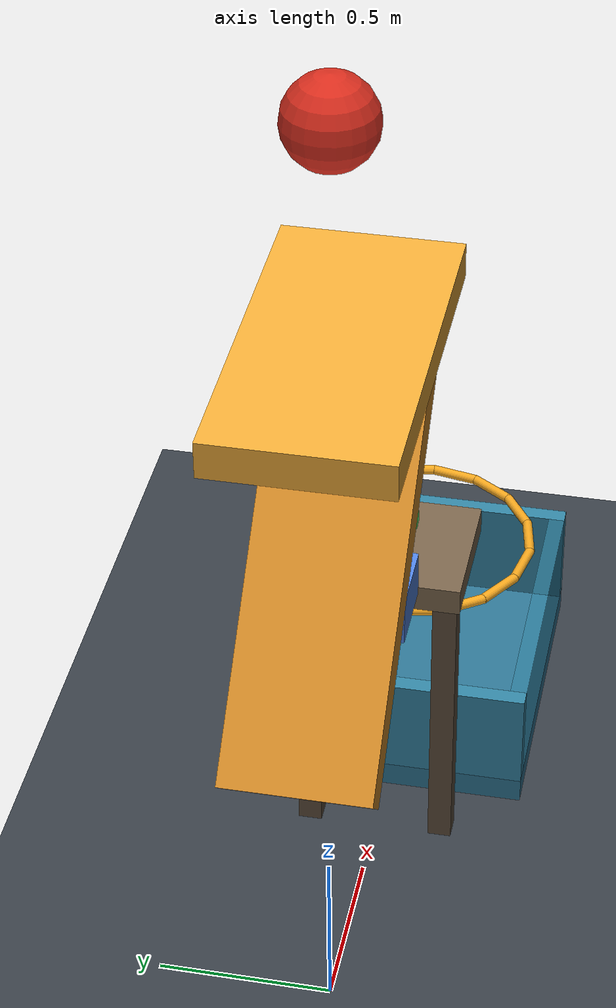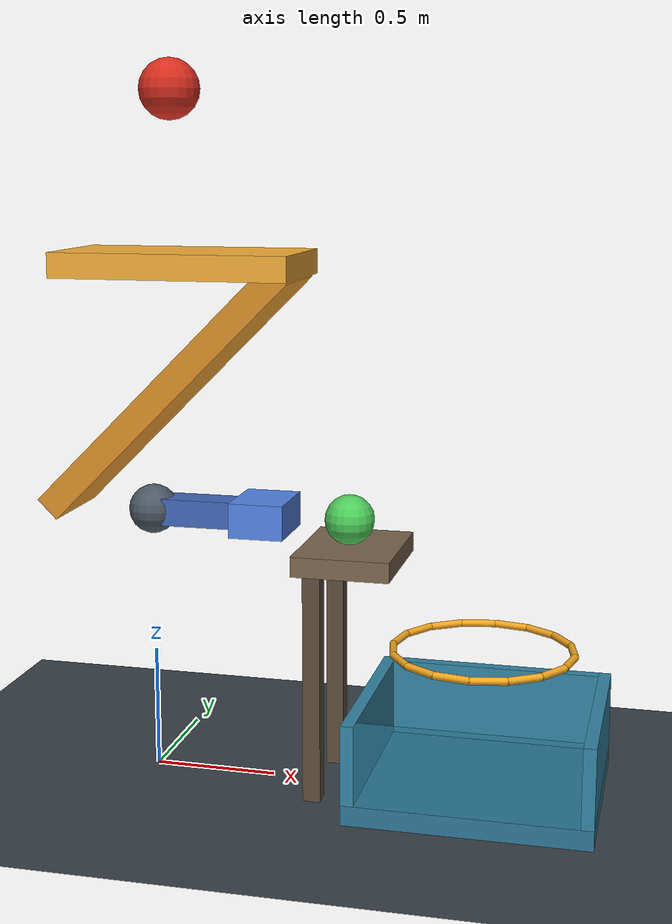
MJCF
<mujoco model="trigger_wedge_cart_drop">
  <compiler angle="degree" autolimits="true"/>
  <option timestep="0.002" gravity="0 0 -9.81" integrator="implicitfast" iterations="80"/>
  <size njmax="1000" nconmax="200"/>

  <visual>
    <headlight ambient="0.35 0.35 0.35" diffuse="0.7 0.7 0.7" specular="0.2 0.2 0.2"/>
  </visual>

  <worldbody>
    <light name="overhead_light" pos="0 -2 5" dir="0 0 -1"/>
    <camera name="overview" pos="3.8 -5.5 3.4" xyaxes="0.85 0.53 0 -0.24 0.39 0.89"/>

    <geom name="floor" type="plane" pos="0 0 0" size="5 5 0.1" friction="0.8 0.02 0.005" rgba="0.22 0.25 0.28 1"/>

    <!-- The payload starts tangent to the shelf, whose right edge is x=1.03. -->
    <body name="ledge" pos="0 0 0">
      <geom name="ledge_shelf" type="box" pos="0.835 0 0.96" size="0.195 0.25 0.04" friction="0.25 0.01 0.001" solref="0.015 1" rgba="0.48 0.40 0.30 1"/>
      <geom name="ledge_front_leg" type="box" pos="0.72 -0.20 0.46" size="0.035 0.035 0.46" rgba="0.36 0.30 0.23 1"/>
      <geom name="ledge_back_leg" type="box" pos="0.72 0.20 0.46" size="0.035 0.035 0.46" rgba="0.36 0.30 0.23 1"/>
    </body>

    <!-- A horizontal, open hoop made entirely from capsule segments. -->
    <body name="hoop" pos="1.36 0 0.60">
      <geom name="hoop_segment_00" type="capsule" fromto="0.36 0 0 0.332597 0.137766 0" size="0.015" rgba="0.95 0.65 0.12 1"/>
      <geom name="hoop_segment_01" type="capsule" fromto="0.332597 0.137766 0 0.254558 0.254558 0" size="0.015" rgba="0.95 0.65 0.12 1"/>
      <geom name="hoop_segment_02" type="capsule" fromto="0.254558 0.254558 0 0.137766 0.332597 0" size="0.015" rgba="0.95 0.65 0.12 1"/>
      <geom name="hoop_segment_03" type="capsule" fromto="0.137766 0.332597 0 0 0.36 0" size="0.015" rgba="0.95 0.65 0.12 1"/>
      <geom name="hoop_segment_04" type="capsule" fromto="0 0.36 0 -0.137766 0.332597 0" size="0.015" rgba="0.95 0.65 0.12 1"/>
      <geom name="hoop_segment_05" type="capsule" fromto="-0.137766 0.332597 0 -0.254558 0.254558 0" size="0.015" rgba="0.95 0.65 0.12 1"/>
      <geom name="hoop_segment_06" type="capsule" fromto="-0.254558 0.254558 0 -0.332597 0.137766 0" size="0.015" rgba="0.95 0.65 0.12 1"/>
      <geom name="hoop_segment_07" type="capsule" fromto="-0.332597 0.137766 0 -0.36 0 0" size="0.015" rgba="0.95 0.65 0.12 1"/>
      <geom name="hoop_segment_08" type="capsule" fromto="-0.36 0 0 -0.332597 -0.137766 0" size="0.015" rgba="0.95 0.65 0.12 1"/>
      <geom name="hoop_segment_09" type="capsule" fromto="-0.332597 -0.137766 0 -0.254558 -0.254558 0" size="0.015" rgba="0.95 0.65 0.12 1"/>
      <geom name="hoop_segment_10" type="capsule" fromto="-0.254558 -0.254558 0 -0.137766 -0.332597 0" size="0.015" rgba="0.95 0.65 0.12 1"/>
      <geom name="hoop_segment_11" type="capsule" fromto="-0.137766 -0.332597 0 0 -0.36 0" size="0.015" rgba="0.95 0.65 0.12 1"/>
      <geom name="hoop_segment_12" type="capsule" fromto="0 -0.36 0 0.137766 -0.332597 0" size="0.015" rgba="0.95 0.65 0.12 1"/>
      <geom name="hoop_segment_13" type="capsule" fromto="0.137766 -0.332597 0 0.254558 -0.254558 0" size="0.015" rgba="0.95 0.65 0.12 1"/>
      <geom name="hoop_segment_14" type="capsule" fromto="0.254558 -0.254558 0 0.332597 -0.137766 0" size="0.015" rgba="0.95 0.65 0.12 1"/>
      <geom name="hoop_segment_15" type="capsule" fromto="0.332597 -0.137766 0 0.36 0 0" size="0.015" rgba="0.95 0.65 0.12 1"/>
    </body>

    <body name="box" pos="1.36 0 0">
      <geom name="box_bottom" type="box" pos="0 0 0.04" size="0.48 0.42 0.04" priority="1" friction="0.9 0.03 0.008" solref="0.015 1" rgba="0.18 0.46 0.58 1"/>
      <geom name="box_left_wall" type="box" pos="-0.455 0 0.24" size="0.025 0.42 0.16" priority="1" friction="0.9 0.03 0.008" solref="0.015 1" rgba="0.20 0.52 0.64 1"/>
      <geom name="box_right_wall" type="box" pos="0.455 0 0.24" size="0.025 0.42 0.16" priority="1" friction="0.9 0.03 0.008" solref="0.015 1" rgba="0.20 0.52 0.64 1"/>
      <geom name="box_front_wall" type="box" pos="0 -0.395 0.24" size="0.43 0.025 0.16" priority="1" friction="0.9 0.03 0.008" solref="0.015 1" rgba="0.20 0.52 0.64 0.65"/>
      <geom name="box_back_wall" type="box" pos="0 0.395 0.24" size="0.43 0.025 0.16" priority="1" friction="0.9 0.03 0.008" solref="0.015 1" rgba="0.20 0.52 0.64 1"/>
    </body>

    <!-- Trigger bottom: z=2.65. Wedge landing surface: z=2.15. -->
    <body name="trigger" pos="0.10 0 2.77">
      <freejoint name="trigger_free"/>
      <geom name="trigger_ball" type="sphere" size="0.12" mass="5" friction="0.8 0.02 0.002" solref="0.015 1" rgba="0.85 0.18 0.12 1"/>
    </body>

    <!-- The spring exactly balances the unloaded wedge's weight at q=0. -->
    <!-- Loading it with the trigger drives its inclined underside downward. -->
    <body name="wedge" pos="0 0 1.50">
      <inertial pos="0.10 0 0.25" mass="1" diaginertia="0.09 0.16 0.09"/>
      <joint name="wedge_slide" type="slide" axis="0 0 1" limited="true" range="-0.70 0" stiffness="40" springref="0.24525" damping="70" solreflimit="0.015 1"/>
      <geom name="wedge_ramp" type="box" pos="0.10 0 0.10" quat="0.923879533 0 -0.382683432 0" size="0.68 0.20 0.055" priority="1" friction="0.02 0.001 0.0001" solref="0.015 1" rgba="0.85 0.56 0.16 1"/>
      <geom name="wedge_landing_plate" type="box" pos="0.15 0 0.60" size="0.48 0.24 0.05" friction="0.8 0.02 0.002" solref="0.015 1" rgba="0.95 0.68 0.22 1"/>
    </body>

    <body name="cart" pos="0 0 1.10">
      <inertial pos="0.25 0 0" mass="1" diaginertia="0.02 0.08 0.08"/>
      <joint name="cart_slide" type="slide" axis="1 0 0" limited="true" range="0 0.62" damping="12" frictionloss="0.05" solreflimit="0.015 1"/>
      <geom name="cart_follower" type="sphere" pos="0 0 0" size="0.10" friction="0.02 0.001 0.0001" solref="0.015 1" rgba="0.30 0.34 0.39 1"/>
      <geom name="cart_beam" type="box" pos="0.27 0 0" size="0.29 0.065 0.055" friction="0.02 0.001 0.0001" rgba="0.25 0.40 0.72 1"/>
      <geom name="cart_striker" type="box" pos="0.47 0 0" size="0.11 0.14 0.07" priority="2" friction="0.02 0.001 0.0001" solref="0.015 1" rgba="0.32 0.52 0.90 1"/>
    </body>

    <body name="block" pos="0.82 0 1.10">
      <freejoint name="block_free"/>
      <geom name="block_payload" type="sphere" size="0.10" mass="0.20" friction="0.45 0.02 0.003" solref="0.015 1" rgba="0.30 0.80 0.35 1"/>
    </body>
  </worldbody>

  <keyframe>
    <key name="start" qpos="0.10 0 2.77 1 0 0 0 0 0 0.82 0 1.10 1 0 0 0"/>
  </keyframe>
</mujoco>
